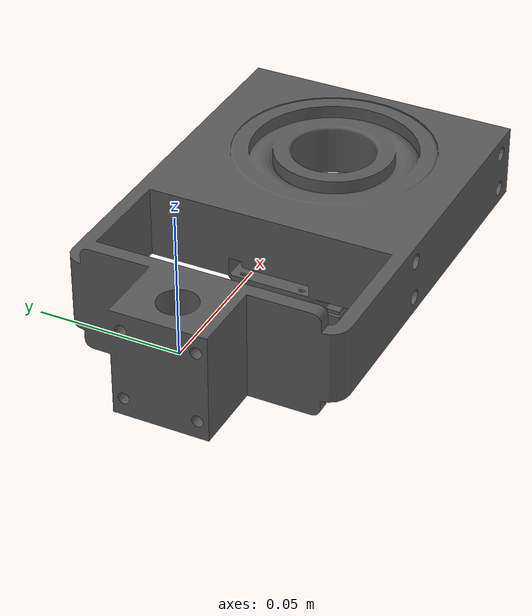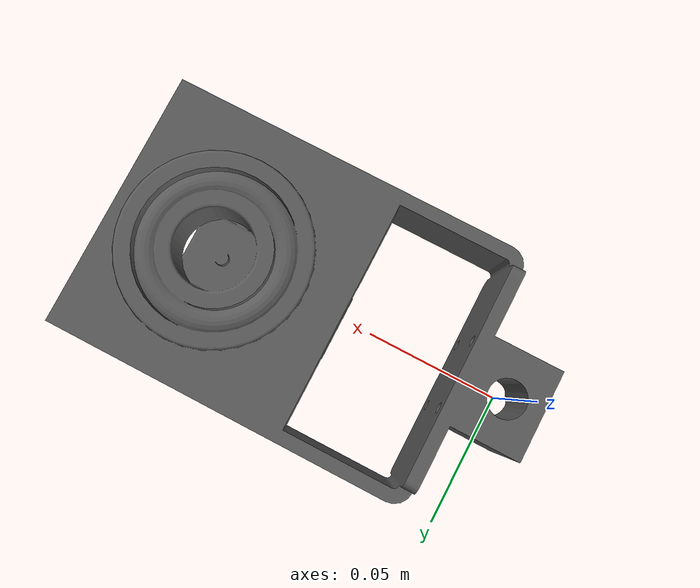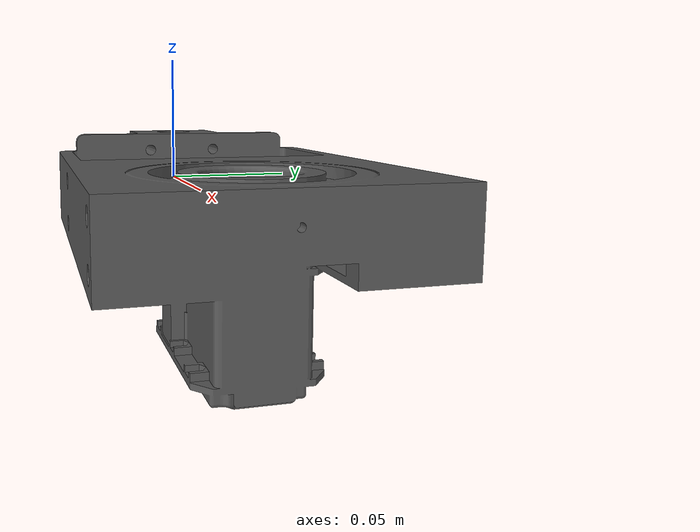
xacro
<robot name="elevator_link"><link name="elevator_link">
    <inertial>
      <origin rpy="0 0 0" xyz="0.0954671716579415 1.91586249009607E-06 -0.0185743175743276" />
      <mass value="1.09057945344451" />
      <inertia ixx="0.000835857275985966" ixy="5.81870910353681E-08" ixz="-3.13493979506258E-05" iyy="0.00128840659932805" iyz="1.45397132642805E-07" izz="0.00136461371089342" />
    </inertial>
    <visual>
      <origin rpy="0 0 0" xyz="0 0 0" />
      <geometry>
        <mesh filename="package://robotican_description/komodo/meshes/elevator_link.STL" />
      </geometry>
      <material name="">
        <color rgba="0.35 0.35 0.35 1" />
      </material>
    </visual>
    <collision>
      <origin rpy="0 0 0" xyz="0 0 0" />
      <geometry>
        <mesh filename="package://robotican_description/komodo/meshes/elevator_link.STL" />
      </geometry>
    </collision>
  </link>
  </robot>
